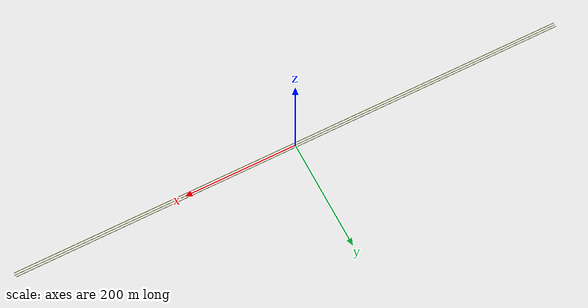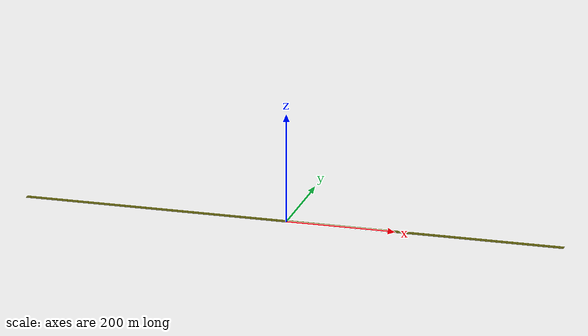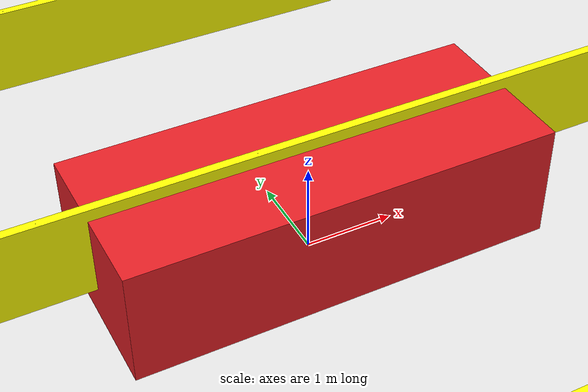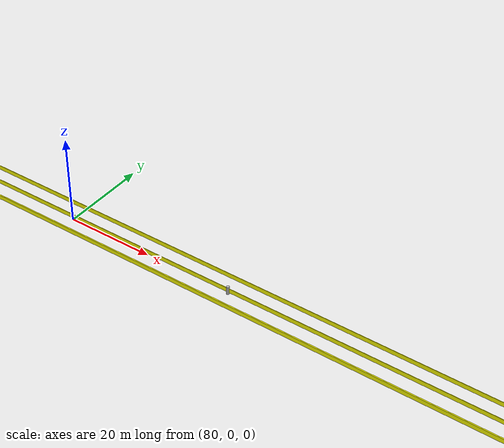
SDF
<?xml version="1.0" ?>
<sdf version='1.6'>
<world name='SKDGenTestingEnvironmnent'>

	 <!-- Model of the Robot -->
    <include>
      <uri>model://Car</uri>
      <pose>0 0 0.65 0 0 0</pose>
    </include>

    <!-- Model of the cylinder cup  -->
    <model name="Pedestrian">
      <link name='PedestrianLink'>
          <pose>120 0 0.93 0 -0 0</pose>
          <collision name='PedCollision'>
            <geometry>
              <cylinder>
                <radius>0.34</radius>
                <length>1.86</length>
              </cylinder>
            </geometry>
          </collision>
          <visual name='PedCollision'>
            <geometry>
              <cylinder>
                <radius>0.34</radius>
                <length>1.86</length>
              </cylinder>
            </geometry>
          </visual>
      </link>
    </model>

     <!-- Model of the cylinder cup  -->
    <model name="GoalStrip">
      <link name='GoalStrip'>
          <pose>0 -4 0.93 0 -0 0</pose>
          <visual name='GoalStripVisual'>
            <geometry>
              <box>
                <size>1000 0.25 1</size>
              </box>
            </geometry>
            <material>
              <ambient> 1 1 0 1 </ambient>
            </material>
          </visual>
      </link>

      <link name='MidLane'>
          <pose>0 0 0.93 0 -0 0</pose>
          <visual name='MidLaneVisual'>
            <geometry>
              <box>
                <size>1000 0.1 1</size>
              </box>
            </geometry>
            <material>
              <ambient> 1 1 0 1 </ambient>
            </material>
          </visual>
      </link>

       <link name='StartingStrip'>
          <pose>0 3.75 0.93 0 -0 0</pose>
          <visual name='MidLaneVisual'>
            <geometry>
              <box>
                <size>1000 0.1 1</size>
              </box>
            </geometry>
            <material>
              <ambient> 1 1 0 1 </ambient>
            </material>
          </visual>
      </link>

    </model>

</world>
</sdf>

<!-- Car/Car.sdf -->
<sdf version='1.6'>
  <model name='Car'>
    <link name="CarLink">
      <pose frame=''>0 0 0 0 0 0</pose>
      <collision name='CarLink_collision'>
        <geometry>
          <box>
            <size>4.68 1.88 1.3</size>
          </box>
        </geometry>
      </collision>
      <visual name='CarLink_visual'>
        <geometry>
          <box>
            <size>4.68 1.88 1.3</size>
          </box>
        </geometry>
        <material>
          <ambient>0.90980392156 0.1294117647 0.15294117647  1.0</ambient>
        </material>
      </visual>
      <gravity>0</gravity>
      <self_collide>0</self_collide>
    </link>
  </model>
</sdf>
